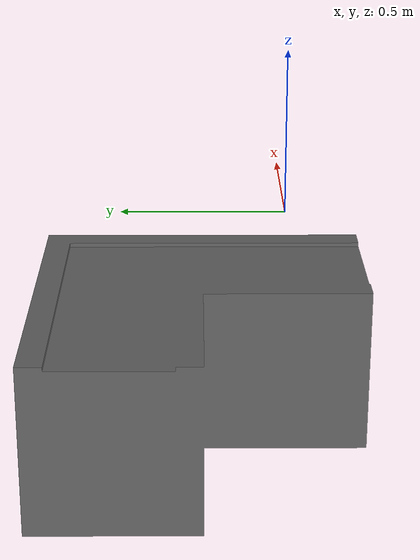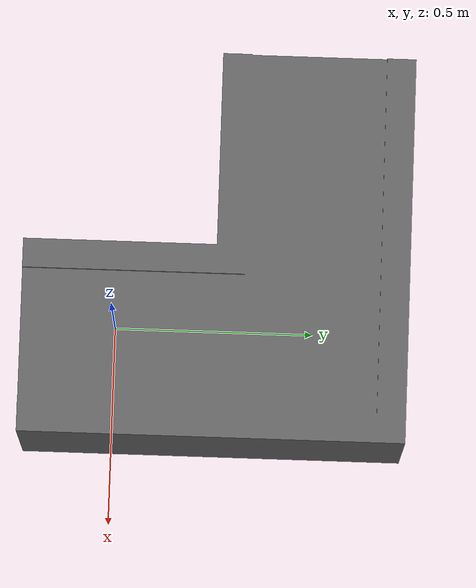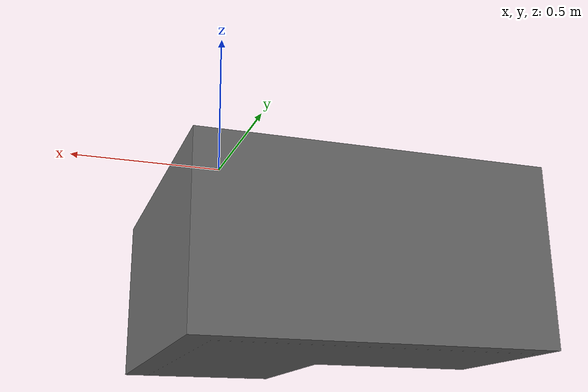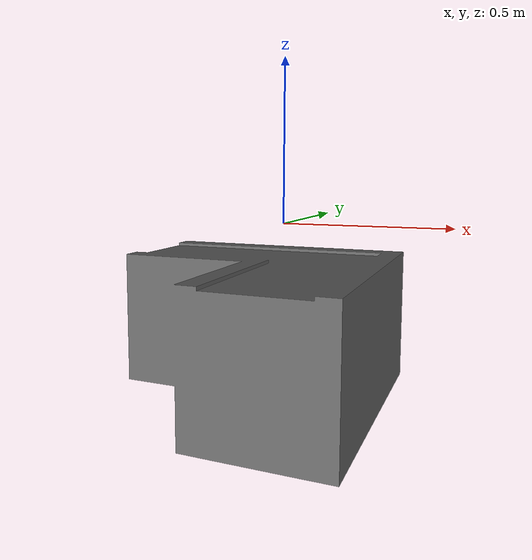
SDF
<?xml version="1.0" ?>
<sdf version="1.4">
  <model name="MascorCity_street_left_turn">
    <static>true</static>
    <link name="street_link">
      <pose>0 0 -0.43 1.5708 0 0</pose>
      <collision name="street_colision">
        <geometry>
          <mesh>
            <uri>model://mascor_city_street_left_turn/meshes/mascorcity_street_left_turn.dae</uri>
            <scale>0.5 0.5 0.5</scale>
          </mesh>
        </geometry>
      </collision>
      <visual name="street_visual">
        <geometry>
          <mesh>
            <uri>model://mascor_city_street_left_turn/meshes/mascorcity_street_left_turn.dae</uri>
            <scale>0.5 0.5 0.5</scale>
          </mesh>
        </geometry>
      </visual>
    </link>
  </model>
</sdf>
